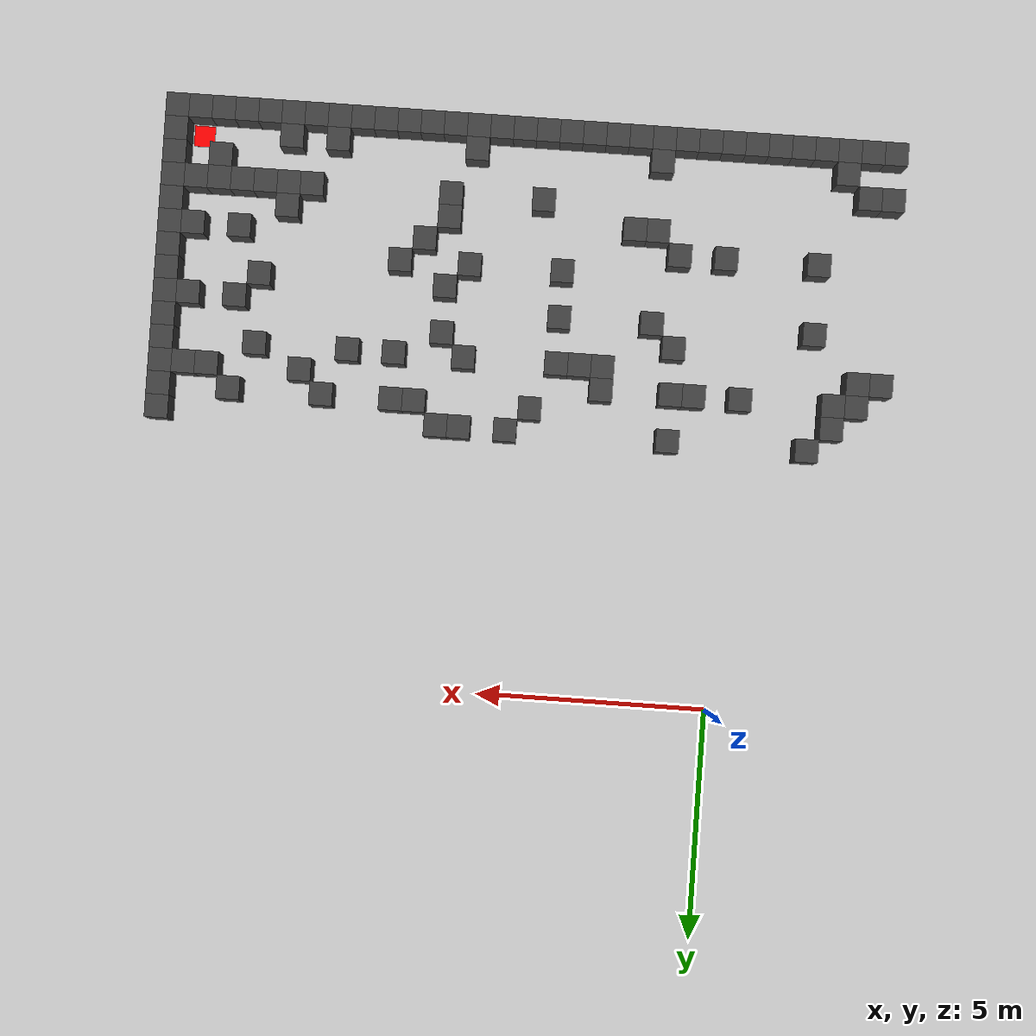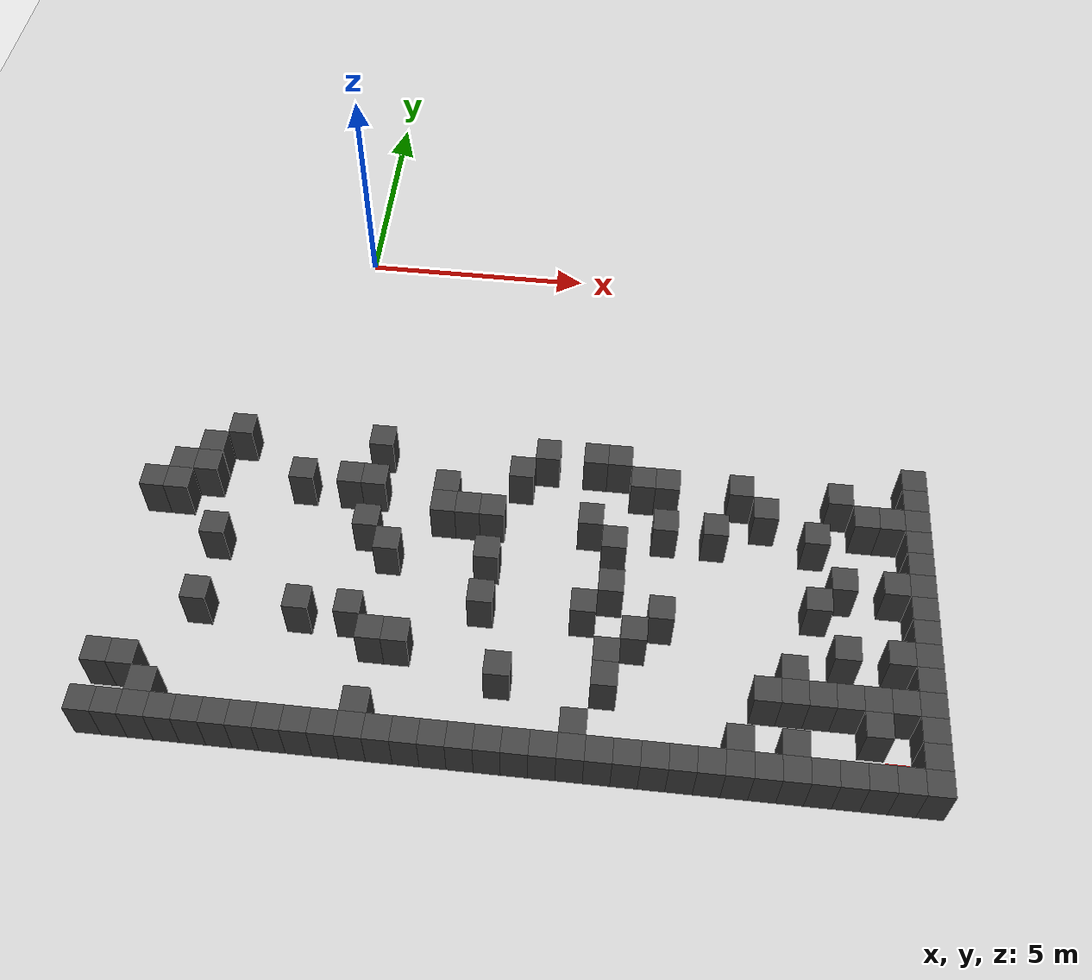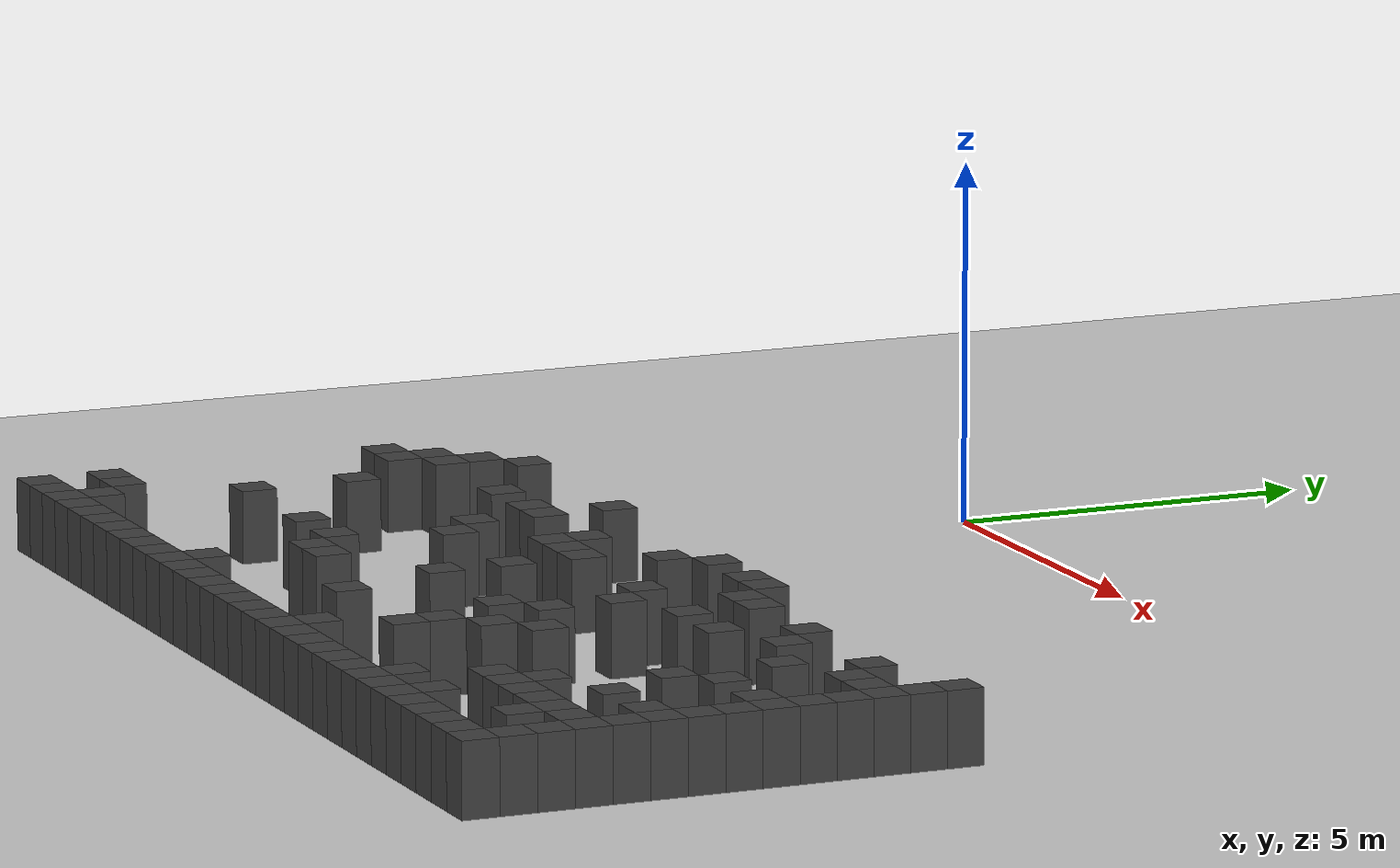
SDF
<sdf version="1.7">
 <world name="map_3200">
  <model name="ground_plane">
   <static>true</static>
   <link name="link">
    <collision name="collision">
     <geometry><plane><normal>0 0 1</normal><size>200 200</size></plane></geometry>
    </collision>
    <visual name="visual">
     <geometry><plane><normal>0 0 1</normal><size>200 200</size></plane></geometry>
     <material><ambient>0.8 0.8 0.8 1</ambient><diffuse>0.8 0.8 0.8 1</diffuse></material>
    </visual>
   </link>
  </model>
  <model name="maze_environment">
   <static>true</static>
   <link name="wall_387">
    <pose>-1.750 -5.750 0.500 0 0 0</pose>
    <collision name="col"><geometry><box><size>0.5 0.5 1.0</size></box></geometry></collision>
    <visual name="vis">
     <geometry><box><size>0.5 0.5 1.0</size></box></geometry>
     <material><ambient>0.15 0.15 0.15 1</ambient><diffuse>0.25 0.25 0.25 1</diffuse></material>
    </visual>
   </link>
   <link name="wall_388">
    <pose>1.250 -5.750 0.500 0 0 0</pose>
    <collision name="col"><geometry><box><size>0.5 0.5 1.0</size></box></geometry></collision>
    <visual name="vis">
     <geometry><box><size>0.5 0.5 1.0</size></box></geometry>
     <material><ambient>0.15 0.15 0.15 1</ambient><diffuse>0.25 0.25 0.25 1</diffuse></material>
    </visual>
   </link>
   <link name="wall_389">
    <pose>4.750 -5.750 0.500 0 0 0</pose>
    <collision name="col"><geometry><box><size>0.5 0.5 1.0</size></box></geometry></collision>
    <visual name="vis">
     <geometry><box><size>0.5 0.5 1.0</size></box></geometry>
     <material><ambient>0.15 0.15 0.15 1</ambient><diffuse>0.25 0.25 0.25 1</diffuse></material>
    </visual>
   </link>
   <link name="wall_390">
    <pose>5.750 -5.750 0.500 0 0 0</pose>
    <collision name="col"><geometry><box><size>0.5 0.5 1.0</size></box></geometry></collision>
    <visual name="vis">
     <geometry><box><size>0.5 0.5 1.0</size></box></geometry>
     <material><ambient>0.15 0.15 0.15 1</ambient><diffuse>0.25 0.25 0.25 1</diffuse></material>
    </visual>
   </link>
   <link name="wall_391">
    <pose>6.250 -5.750 0.500 0 0 0</pose>
    <collision name="col"><geometry><box><size>0.5 0.5 1.0</size></box></geometry></collision>
    <visual name="vis">
     <geometry><box><size>0.5 0.5 1.0</size></box></geometry>
     <material><ambient>0.15 0.15 0.15 1</ambient><diffuse>0.25 0.25 0.25 1</diffuse></material>
    </visual>
   </link>
   <link name="wall_392">
    <pose>12.250 -5.750 0.500 0 0 0</pose>
    <collision name="col"><geometry><box><size>0.5 0.5 1.0</size></box></geometry></collision>
    <visual name="vis">
     <geometry><box><size>0.5 0.5 1.0</size></box></geometry>
     <material><ambient>0.15 0.15 0.15 1</ambient><diffuse>0.25 0.25 0.25 1</diffuse></material>
    </visual>
   </link>
   <link name="wall_397">
    <pose>-2.250 -6.250 0.500 0 0 0</pose>
    <collision name="col"><geometry><box><size>0.5 0.5 1.0</size></box></geometry></collision>
    <visual name="vis">
     <geometry><box><size>0.5 0.5 1.0</size></box></geometry>
     <material><ambient>0.15 0.15 0.15 1</ambient><diffuse>0.25 0.25 0.25 1</diffuse></material>
    </visual>
   </link>
   <link name="wall_398">
    <pose>4.250 -6.250 0.500 0 0 0</pose>
    <collision name="col"><geometry><box><size>0.5 0.5 1.0</size></box></geometry></collision>
    <visual name="vis">
     <geometry><box><size>0.5 0.5 1.0</size></box></geometry>
     <material><ambient>0.15 0.15 0.15 1</ambient><diffuse>0.25 0.25 0.25 1</diffuse></material>
    </visual>
   </link>
   <link name="wall_399">
    <pose>6.750 -6.250 0.500 0 0 0</pose>
    <collision name="col"><geometry><box><size>0.5 0.5 1.0</size></box></geometry></collision>
    <visual name="vis">
     <geometry><box><size>0.5 0.5 1.0</size></box></geometry>
     <material><ambient>0.15 0.15 0.15 1</ambient><diffuse>0.25 0.25 0.25 1</diffuse></material>
    </visual>
   </link>
   <link name="wall_400">
    <pose>7.250 -6.250 0.500 0 0 0</pose>
    <collision name="col"><geometry><box><size>0.5 0.5 1.0</size></box></geometry></collision>
    <visual name="vis">
     <geometry><box><size>0.5 0.5 1.0</size></box></geometry>
     <material><ambient>0.15 0.15 0.15 1</ambient><diffuse>0.25 0.25 0.25 1</diffuse></material>
    </visual>
   </link>
   <link name="wall_401">
    <pose>8.750 -6.250 0.500 0 0 0</pose>
    <collision name="col"><geometry><box><size>0.5 0.5 1.0</size></box></geometry></collision>
    <visual name="vis">
     <geometry><box><size>0.5 0.5 1.0</size></box></geometry>
     <material><ambient>0.15 0.15 0.15 1</ambient><diffuse>0.25 0.25 0.25 1</diffuse></material>
    </visual>
   </link>
   <link name="wall_402">
    <pose>10.750 -6.250 0.500 0 0 0</pose>
    <collision name="col"><geometry><box><size>0.5 0.5 1.0</size></box></geometry></collision>
    <visual name="vis">
     <geometry><box><size>0.5 0.5 1.0</size></box></geometry>
     <material><ambient>0.15 0.15 0.15 1</ambient><diffuse>0.25 0.25 0.25 1</diffuse></material>
    </visual>
   </link>
   <link name="wall_403">
    <pose>12.250 -6.250 0.500 0 0 0</pose>
    <collision name="col"><geometry><box><size>0.5 0.5 1.0</size></box></geometry></collision>
    <visual name="vis">
     <geometry><box><size>0.5 0.5 1.0</size></box></geometry>
     <material><ambient>0.15 0.15 0.15 1</ambient><diffuse>0.25 0.25 0.25 1</diffuse></material>
    </visual>
   </link>
   <link name="wall_407">
    <pose>-2.750 -6.750 0.500 0 0 0</pose>
    <collision name="col"><geometry><box><size>0.5 0.5 1.0</size></box></geometry></collision>
    <visual name="vis">
     <geometry><box><size>0.5 0.5 1.0</size></box></geometry>
     <material><ambient>0.15 0.15 0.15 1</ambient><diffuse>0.25 0.25 0.25 1</diffuse></material>
    </visual>
   </link>
   <link name="wall_408">
    <pose>-2.250 -6.750 0.500 0 0 0</pose>
    <collision name="col"><geometry><box><size>0.5 0.5 1.0</size></box></geometry></collision>
    <visual name="vis">
     <geometry><box><size>0.5 0.5 1.0</size></box></geometry>
     <material><ambient>0.15 0.15 0.15 1</ambient><diffuse>0.25 0.25 0.25 1</diffuse></material>
    </visual>
   </link>
   <link name="wall_409">
    <pose>-0.250 -6.750 0.500 0 0 0</pose>
    <collision name="col"><geometry><box><size>0.5 0.5 1.0</size></box></geometry></collision>
    <visual name="vis">
     <geometry><box><size>0.5 0.5 1.0</size></box></geometry>
     <material><ambient>0.15 0.15 0.15 1</ambient><diffuse>0.25 0.25 0.25 1</diffuse></material>
    </visual>
   </link>
   <link name="wall_410">
    <pose>0.750 -6.750 0.500 0 0 0</pose>
    <collision name="col"><geometry><box><size>0.5 0.5 1.0</size></box></geometry></collision>
    <visual name="vis">
     <geometry><box><size>0.5 0.5 1.0</size></box></geometry>
     <material><ambient>0.15 0.15 0.15 1</ambient><diffuse>0.25 0.25 0.25 1</diffuse></material>
    </visual>
   </link>
   <link name="wall_411">
    <pose>1.250 -6.750 0.500 0 0 0</pose>
    <collision name="col"><geometry><box><size>0.5 0.5 1.0</size></box></geometry></collision>
    <visual name="vis">
     <geometry><box><size>0.5 0.5 1.0</size></box></geometry>
     <material><ambient>0.15 0.15 0.15 1</ambient><diffuse>0.25 0.25 0.25 1</diffuse></material>
    </visual>
   </link>
   <link name="wall_412">
    <pose>2.750 -6.750 0.500 0 0 0</pose>
    <collision name="col"><geometry><box><size>0.5 0.5 1.0</size></box></geometry></collision>
    <visual name="vis">
     <geometry><box><size>0.5 0.5 1.0</size></box></geometry>
     <material><ambient>0.15 0.15 0.15 1</ambient><diffuse>0.25 0.25 0.25 1</diffuse></material>
    </visual>
   </link>
   <link name="wall_413">
    <pose>9.250 -6.750 0.500 0 0 0</pose>
    <collision name="col"><geometry><box><size>0.5 0.5 1.0</size></box></geometry></collision>
    <visual name="vis">
     <geometry><box><size>0.5 0.5 1.0</size></box></geometry>
     <material><ambient>0.15 0.15 0.15 1</ambient><diffuse>0.25 0.25 0.25 1</diffuse></material>
    </visual>
   </link>
   <link name="wall_414">
    <pose>11.250 -6.750 0.500 0 0 0</pose>
    <collision name="col"><geometry><box><size>0.5 0.5 1.0</size></box></geometry></collision>
    <visual name="vis">
     <geometry><box><size>0.5 0.5 1.0</size></box></geometry>
     <material><ambient>0.15 0.15 0.15 1</ambient><diffuse>0.25 0.25 0.25 1</diffuse></material>
    </visual>
   </link>
   <link name="wall_415">
    <pose>11.750 -6.750 0.500 0 0 0</pose>
    <collision name="col"><geometry><box><size>0.5 0.5 1.0</size></box></geometry></collision>
    <visual name="vis">
     <geometry><box><size>0.5 0.5 1.0</size></box></geometry>
     <material><ambient>0.15 0.15 0.15 1</ambient><diffuse>0.25 0.25 0.25 1</diffuse></material>
    </visual>
   </link>
   <link name="wall_416">
    <pose>12.250 -6.750 0.500 0 0 0</pose>
    <collision name="col"><geometry><box><size>0.5 0.5 1.0</size></box></geometry></collision>
    <visual name="vis">
     <geometry><box><size>0.5 0.5 1.0</size></box></geometry>
     <material><ambient>0.15 0.15 0.15 1</ambient><diffuse>0.25 0.25 0.25 1</diffuse></material>
    </visual>
   </link>
   <link name="wall_422">
    <pose>-3.250 -7.250 0.500 0 0 0</pose>
    <collision name="col"><geometry><box><size>0.5 0.5 1.0</size></box></geometry></collision>
    <visual name="vis">
     <geometry><box><size>0.5 0.5 1.0</size></box></geometry>
     <material><ambient>0.15 0.15 0.15 1</ambient><diffuse>0.25 0.25 0.25 1</diffuse></material>
    </visual>
   </link>
   <link name="wall_423">
    <pose>-2.750 -7.250 0.500 0 0 0</pose>
    <collision name="col"><geometry><box><size>0.5 0.5 1.0</size></box></geometry></collision>
    <visual name="vis">
     <geometry><box><size>0.5 0.5 1.0</size></box></geometry>
     <material><ambient>0.15 0.15 0.15 1</ambient><diffuse>0.25 0.25 0.25 1</diffuse></material>
    </visual>
   </link>
   <link name="wall_424">
    <pose>2.750 -7.250 0.500 0 0 0</pose>
    <collision name="col"><geometry><box><size>0.5 0.5 1.0</size></box></geometry></collision>
    <visual name="vis">
     <geometry><box><size>0.5 0.5 1.0</size></box></geometry>
     <material><ambient>0.15 0.15 0.15 1</ambient><diffuse>0.25 0.25 0.25 1</diffuse></material>
    </visual>
   </link>
   <link name="wall_425">
    <pose>3.250 -7.250 0.500 0 0 0</pose>
    <collision name="col"><geometry><box><size>0.5 0.5 1.0</size></box></geometry></collision>
    <visual name="vis">
     <geometry><box><size>0.5 0.5 1.0</size></box></geometry>
     <material><ambient>0.15 0.15 0.15 1</ambient><diffuse>0.25 0.25 0.25 1</diffuse></material>
    </visual>
   </link>
   <link name="wall_426">
    <pose>3.750 -7.250 0.500 0 0 0</pose>
    <collision name="col"><geometry><box><size>0.5 0.5 1.0</size></box></geometry></collision>
    <visual name="vis">
     <geometry><box><size>0.5 0.5 1.0</size></box></geometry>
     <material><ambient>0.15 0.15 0.15 1</ambient><diffuse>0.25 0.25 0.25 1</diffuse></material>
    </visual>
   </link>
   <link name="wall_427">
    <pose>5.750 -7.250 0.500 0 0 0</pose>
    <collision name="col"><geometry><box><size>0.5 0.5 1.0</size></box></geometry></collision>
    <visual name="vis">
     <geometry><box><size>0.5 0.5 1.0</size></box></geometry>
     <material><ambient>0.15 0.15 0.15 1</ambient><diffuse>0.25 0.25 0.25 1</diffuse></material>
    </visual>
   </link>
   <link name="wall_428">
    <pose>7.250 -7.250 0.500 0 0 0</pose>
    <collision name="col"><geometry><box><size>0.5 0.5 1.0</size></box></geometry></collision>
    <visual name="vis">
     <geometry><box><size>0.5 0.5 1.0</size></box></geometry>
     <material><ambient>0.15 0.15 0.15 1</ambient><diffuse>0.25 0.25 0.25 1</diffuse></material>
    </visual>
   </link>
   <link name="wall_429">
    <pose>8.250 -7.250 0.500 0 0 0</pose>
    <collision name="col"><geometry><box><size>0.5 0.5 1.0</size></box></geometry></collision>
    <visual name="vis">
     <geometry><box><size>0.5 0.5 1.0</size></box></geometry>
     <material><ambient>0.15 0.15 0.15 1</ambient><diffuse>0.25 0.25 0.25 1</diffuse></material>
    </visual>
   </link>
   <link name="wall_430">
    <pose>10.250 -7.250 0.500 0 0 0</pose>
    <collision name="col"><geometry><box><size>0.5 0.5 1.0</size></box></geometry></collision>
    <visual name="vis">
     <geometry><box><size>0.5 0.5 1.0</size></box></geometry>
     <material><ambient>0.15 0.15 0.15 1</ambient><diffuse>0.25 0.25 0.25 1</diffuse></material>
    </visual>
   </link>
   <link name="wall_431">
    <pose>12.250 -7.250 0.500 0 0 0</pose>
    <collision name="col"><geometry><box><size>0.5 0.5 1.0</size></box></geometry></collision>
    <visual name="vis">
     <geometry><box><size>0.5 0.5 1.0</size></box></geometry>
     <material><ambient>0.15 0.15 0.15 1</ambient><diffuse>0.25 0.25 0.25 1</diffuse></material>
    </visual>
   </link>
   <link name="wall_435">
    <pose>1.250 -7.750 0.500 0 0 0</pose>
    <collision name="col"><geometry><box><size>0.5 0.5 1.0</size></box></geometry></collision>
    <visual name="vis">
     <geometry><box><size>0.5 0.5 1.0</size></box></geometry>
     <material><ambient>0.15 0.15 0.15 1</ambient><diffuse>0.25 0.25 0.25 1</diffuse></material>
    </visual>
   </link>
   <link name="wall_436">
    <pose>6.250 -7.750 0.500 0 0 0</pose>
    <collision name="col"><geometry><box><size>0.5 0.5 1.0</size></box></geometry></collision>
    <visual name="vis">
     <geometry><box><size>0.5 0.5 1.0</size></box></geometry>
     <material><ambient>0.15 0.15 0.15 1</ambient><diffuse>0.25 0.25 0.25 1</diffuse></material>
    </visual>
   </link>
   <link name="wall_437">
    <pose>12.250 -7.750 0.500 0 0 0</pose>
    <collision name="col"><geometry><box><size>0.5 0.5 1.0</size></box></geometry></collision>
    <visual name="vis">
     <geometry><box><size>0.5 0.5 1.0</size></box></geometry>
     <material><ambient>0.15 0.15 0.15 1</ambient><diffuse>0.25 0.25 0.25 1</diffuse></material>
    </visual>
   </link>
   <link name="wall_441">
    <pose>-1.750 -8.250 0.500 0 0 0</pose>
    <collision name="col"><geometry><box><size>0.5 0.5 1.0</size></box></geometry></collision>
    <visual name="vis">
     <geometry><box><size>0.5 0.5 1.0</size></box></geometry>
     <material><ambient>0.15 0.15 0.15 1</ambient><diffuse>0.25 0.25 0.25 1</diffuse></material>
    </visual>
   </link>
   <link name="wall_442">
    <pose>1.750 -8.250 0.500 0 0 0</pose>
    <collision name="col"><geometry><box><size>0.5 0.5 1.0</size></box></geometry></collision>
    <visual name="vis">
     <geometry><box><size>0.5 0.5 1.0</size></box></geometry>
     <material><ambient>0.15 0.15 0.15 1</ambient><diffuse>0.25 0.25 0.25 1</diffuse></material>
    </visual>
   </link>
   <link name="wall_443">
    <pose>3.750 -8.250 0.500 0 0 0</pose>
    <collision name="col"><geometry><box><size>0.5 0.5 1.0</size></box></geometry></collision>
    <visual name="vis">
     <geometry><box><size>0.5 0.5 1.0</size></box></geometry>
     <material><ambient>0.15 0.15 0.15 1</ambient><diffuse>0.25 0.25 0.25 1</diffuse></material>
    </visual>
   </link>
   <link name="wall_444">
    <pose>10.750 -8.250 0.500 0 0 0</pose>
    <collision name="col"><geometry><box><size>0.5 0.5 1.0</size></box></geometry></collision>
    <visual name="vis">
     <geometry><box><size>0.5 0.5 1.0</size></box></geometry>
     <material><ambient>0.15 0.15 0.15 1</ambient><diffuse>0.25 0.25 0.25 1</diffuse></material>
    </visual>
   </link>
   <link name="wall_445">
    <pose>11.750 -8.250 0.500 0 0 0</pose>
    <collision name="col"><geometry><box><size>0.5 0.5 1.0</size></box></geometry></collision>
    <visual name="vis">
     <geometry><box><size>0.5 0.5 1.0</size></box></geometry>
     <material><ambient>0.15 0.15 0.15 1</ambient><diffuse>0.25 0.25 0.25 1</diffuse></material>
    </visual>
   </link>
   <link name="wall_446">
    <pose>12.250 -8.250 0.500 0 0 0</pose>
    <collision name="col"><geometry><box><size>0.5 0.5 1.0</size></box></geometry></collision>
    <visual name="vis">
     <geometry><box><size>0.5 0.5 1.0</size></box></geometry>
     <material><ambient>0.15 0.15 0.15 1</ambient><diffuse>0.25 0.25 0.25 1</diffuse></material>
    </visual>
   </link>
   <link name="wall_451">
    <pose>6.250 -8.750 0.500 0 0 0</pose>
    <collision name="col"><geometry><box><size>0.5 0.5 1.0</size></box></geometry></collision>
    <visual name="vis">
     <geometry><box><size>0.5 0.5 1.0</size></box></geometry>
     <material><ambient>0.15 0.15 0.15 1</ambient><diffuse>0.25 0.25 0.25 1</diffuse></material>
    </visual>
   </link>
   <link name="wall_452">
    <pose>10.250 -8.750 0.500 0 0 0</pose>
    <collision name="col"><geometry><box><size>0.5 0.5 1.0</size></box></geometry></collision>
    <visual name="vis">
     <geometry><box><size>0.5 0.5 1.0</size></box></geometry>
     <material><ambient>0.15 0.15 0.15 1</ambient><diffuse>0.25 0.25 0.25 1</diffuse></material>
    </visual>
   </link>
   <link name="wall_453">
    <pose>12.250 -8.750 0.500 0 0 0</pose>
    <collision name="col"><geometry><box><size>0.5 0.5 1.0</size></box></geometry></collision>
    <visual name="vis">
     <geometry><box><size>0.5 0.5 1.0</size></box></geometry>
     <material><ambient>0.15 0.15 0.15 1</ambient><diffuse>0.25 0.25 0.25 1</diffuse></material>
    </visual>
   </link>
   <link name="wall_459">
    <pose>3.750 -9.250 0.500 0 0 0</pose>
    <collision name="col"><geometry><box><size>0.5 0.5 1.0</size></box></geometry></collision>
    <visual name="vis">
     <geometry><box><size>0.5 0.5 1.0</size></box></geometry>
     <material><ambient>0.15 0.15 0.15 1</ambient><diffuse>0.25 0.25 0.25 1</diffuse></material>
    </visual>
   </link>
   <link name="wall_460">
    <pose>5.750 -9.250 0.500 0 0 0</pose>
    <collision name="col"><geometry><box><size>0.5 0.5 1.0</size></box></geometry></collision>
    <visual name="vis">
     <geometry><box><size>0.5 0.5 1.0</size></box></geometry>
     <material><ambient>0.15 0.15 0.15 1</ambient><diffuse>0.25 0.25 0.25 1</diffuse></material>
    </visual>
   </link>
   <link name="wall_461">
    <pose>7.250 -9.250 0.500 0 0 0</pose>
    <collision name="col"><geometry><box><size>0.5 0.5 1.0</size></box></geometry></collision>
    <visual name="vis">
     <geometry><box><size>0.5 0.5 1.0</size></box></geometry>
     <material><ambient>0.15 0.15 0.15 1</ambient><diffuse>0.25 0.25 0.25 1</diffuse></material>
    </visual>
   </link>
   <link name="wall_462">
    <pose>12.250 -9.250 0.500 0 0 0</pose>
    <collision name="col"><geometry><box><size>0.5 0.5 1.0</size></box></geometry></collision>
    <visual name="vis">
     <geometry><box><size>0.5 0.5 1.0</size></box></geometry>
     <material><ambient>0.15 0.15 0.15 1</ambient><diffuse>0.25 0.25 0.25 1</diffuse></material>
    </visual>
   </link>
   <link name="wall_464">
    <pose>-1.750 -9.750 0.500 0 0 0</pose>
    <collision name="col"><geometry><box><size>0.5 0.5 1.0</size></box></geometry></collision>
    <visual name="vis">
     <geometry><box><size>0.5 0.5 1.0</size></box></geometry>
     <material><ambient>0.15 0.15 0.15 1</ambient><diffuse>0.25 0.25 0.25 1</diffuse></material>
    </visual>
   </link>
   <link name="wall_465">
    <pose>0.250 -9.750 0.500 0 0 0</pose>
    <collision name="col"><geometry><box><size>0.5 0.5 1.0</size></box></geometry></collision>
    <visual name="vis">
     <geometry><box><size>0.5 0.5 1.0</size></box></geometry>
     <material><ambient>0.15 0.15 0.15 1</ambient><diffuse>0.25 0.25 0.25 1</diffuse></material>
    </visual>
   </link>
   <link name="wall_466">
    <pose>1.250 -9.750 0.500 0 0 0</pose>
    <collision name="col"><geometry><box><size>0.5 0.5 1.0</size></box></geometry></collision>
    <visual name="vis">
     <geometry><box><size>0.5 0.5 1.0</size></box></geometry>
     <material><ambient>0.15 0.15 0.15 1</ambient><diffuse>0.25 0.25 0.25 1</diffuse></material>
    </visual>
   </link>
   <link name="wall_467">
    <pose>6.750 -9.750 0.500 0 0 0</pose>
    <collision name="col"><geometry><box><size>0.5 0.5 1.0</size></box></geometry></collision>
    <visual name="vis">
     <geometry><box><size>0.5 0.5 1.0</size></box></geometry>
     <material><ambient>0.15 0.15 0.15 1</ambient><diffuse>0.25 0.25 0.25 1</diffuse></material>
    </visual>
   </link>
   <link name="wall_468">
    <pose>10.750 -9.750 0.500 0 0 0</pose>
    <collision name="col"><geometry><box><size>0.5 0.5 1.0</size></box></geometry></collision>
    <visual name="vis">
     <geometry><box><size>0.5 0.5 1.0</size></box></geometry>
     <material><ambient>0.15 0.15 0.15 1</ambient><diffuse>0.25 0.25 0.25 1</diffuse></material>
    </visual>
   </link>
   <link name="wall_469">
    <pose>11.750 -9.750 0.500 0 0 0</pose>
    <collision name="col"><geometry><box><size>0.5 0.5 1.0</size></box></geometry></collision>
    <visual name="vis">
     <geometry><box><size>0.5 0.5 1.0</size></box></geometry>
     <material><ambient>0.15 0.15 0.15 1</ambient><diffuse>0.25 0.25 0.25 1</diffuse></material>
    </visual>
   </link>
   <link name="wall_470">
    <pose>12.250 -9.750 0.500 0 0 0</pose>
    <collision name="col"><geometry><box><size>0.5 0.5 1.0</size></box></geometry></collision>
    <visual name="vis">
     <geometry><box><size>0.5 0.5 1.0</size></box></geometry>
     <material><ambient>0.15 0.15 0.15 1</ambient><diffuse>0.25 0.25 0.25 1</diffuse></material>
    </visual>
   </link>
   <link name="wall_477">
    <pose>1.750 -10.250 0.500 0 0 0</pose>
    <collision name="col"><geometry><box><size>0.5 0.5 1.0</size></box></geometry></collision>
    <visual name="vis">
     <geometry><box><size>0.5 0.5 1.0</size></box></geometry>
     <material><ambient>0.15 0.15 0.15 1</ambient><diffuse>0.25 0.25 0.25 1</diffuse></material>
    </visual>
   </link>
   <link name="wall_478">
    <pose>2.250 -10.250 0.500 0 0 0</pose>
    <collision name="col"><geometry><box><size>0.5 0.5 1.0</size></box></geometry></collision>
    <visual name="vis">
     <geometry><box><size>0.5 0.5 1.0</size></box></geometry>
     <material><ambient>0.15 0.15 0.15 1</ambient><diffuse>0.25 0.25 0.25 1</diffuse></material>
    </visual>
   </link>
   <link name="wall_479">
    <pose>6.250 -10.250 0.500 0 0 0</pose>
    <collision name="col"><geometry><box><size>0.5 0.5 1.0</size></box></geometry></collision>
    <visual name="vis">
     <geometry><box><size>0.5 0.5 1.0</size></box></geometry>
     <material><ambient>0.15 0.15 0.15 1</ambient><diffuse>0.25 0.25 0.25 1</diffuse></material>
    </visual>
   </link>
   <link name="wall_480">
    <pose>9.750 -10.250 0.500 0 0 0</pose>
    <collision name="col"><geometry><box><size>0.5 0.5 1.0</size></box></geometry></collision>
    <visual name="vis">
     <geometry><box><size>0.5 0.5 1.0</size></box></geometry>
     <material><ambient>0.15 0.15 0.15 1</ambient><diffuse>0.25 0.25 0.25 1</diffuse></material>
    </visual>
   </link>
   <link name="wall_481">
    <pose>12.250 -10.250 0.500 0 0 0</pose>
    <collision name="col"><geometry><box><size>0.5 0.5 1.0</size></box></geometry></collision>
    <visual name="vis">
     <geometry><box><size>0.5 0.5 1.0</size></box></geometry>
     <material><ambient>0.15 0.15 0.15 1</ambient><diffuse>0.25 0.25 0.25 1</diffuse></material>
    </visual>
   </link>
   <link name="wall_487">
    <pose>4.250 -10.750 0.500 0 0 0</pose>
    <collision name="col"><geometry><box><size>0.5 0.5 1.0</size></box></geometry></collision>
    <visual name="vis">
     <geometry><box><size>0.5 0.5 1.0</size></box></geometry>
     <material><ambient>0.15 0.15 0.15 1</ambient><diffuse>0.25 0.25 0.25 1</diffuse></material>
    </visual>
   </link>
   <link name="wall_488">
    <pose>6.250 -10.750 0.500 0 0 0</pose>
    <collision name="col"><geometry><box><size>0.5 0.5 1.0</size></box></geometry></collision>
    <visual name="vis">
     <geometry><box><size>0.5 0.5 1.0</size></box></geometry>
     <material><ambient>0.15 0.15 0.15 1</ambient><diffuse>0.25 0.25 0.25 1</diffuse></material>
    </visual>
   </link>
   <link name="wall_489">
    <pose>9.250 -10.750 0.500 0 0 0</pose>
    <collision name="col"><geometry><box><size>0.5 0.5 1.0</size></box></geometry></collision>
    <visual name="vis">
     <geometry><box><size>0.5 0.5 1.0</size></box></geometry>
     <material><ambient>0.15 0.15 0.15 1</ambient><diffuse>0.25 0.25 0.25 1</diffuse></material>
    </visual>
   </link>
   <link name="wall_490">
    <pose>9.750 -10.750 0.500 0 0 0</pose>
    <collision name="col"><geometry><box><size>0.5 0.5 1.0</size></box></geometry></collision>
    <visual name="vis">
     <geometry><box><size>0.5 0.5 1.0</size></box></geometry>
     <material><ambient>0.15 0.15 0.15 1</ambient><diffuse>0.25 0.25 0.25 1</diffuse></material>
    </visual>
   </link>
   <link name="wall_491">
    <pose>10.250 -10.750 0.500 0 0 0</pose>
    <collision name="col"><geometry><box><size>0.5 0.5 1.0</size></box></geometry></collision>
    <visual name="vis">
     <geometry><box><size>0.5 0.5 1.0</size></box></geometry>
     <material><ambient>0.15 0.15 0.15 1</ambient><diffuse>0.25 0.25 0.25 1</diffuse></material>
    </visual>
   </link>
   <link name="wall_492">
    <pose>10.750 -10.750 0.500 0 0 0</pose>
    <collision name="col"><geometry><box><size>0.5 0.5 1.0</size></box></geometry></collision>
    <visual name="vis">
     <geometry><box><size>0.5 0.5 1.0</size></box></geometry>
     <material><ambient>0.15 0.15 0.15 1</ambient><diffuse>0.25 0.25 0.25 1</diffuse></material>
    </visual>
   </link>
   <link name="wall_493">
    <pose>11.250 -10.750 0.500 0 0 0</pose>
    <collision name="col"><geometry><box><size>0.5 0.5 1.0</size></box></geometry></collision>
    <visual name="vis">
     <geometry><box><size>0.5 0.5 1.0</size></box></geometry>
     <material><ambient>0.15 0.15 0.15 1</ambient><diffuse>0.25 0.25 0.25 1</diffuse></material>
    </visual>
   </link>
   <link name="wall_494">
    <pose>11.750 -10.750 0.500 0 0 0</pose>
    <collision name="col"><geometry><box><size>0.5 0.5 1.0</size></box></geometry></collision>
    <visual name="vis">
     <geometry><box><size>0.5 0.5 1.0</size></box></geometry>
     <material><ambient>0.15 0.15 0.15 1</ambient><diffuse>0.25 0.25 0.25 1</diffuse></material>
    </visual>
   </link>
   <link name="wall_495">
    <pose>12.250 -10.750 0.500 0 0 0</pose>
    <collision name="col"><geometry><box><size>0.5 0.5 1.0</size></box></geometry></collision>
    <visual name="vis">
     <geometry><box><size>0.5 0.5 1.0</size></box></geometry>
     <material><ambient>0.15 0.15 0.15 1</ambient><diffuse>0.25 0.25 0.25 1</diffuse></material>
    </visual>
   </link>
   <link name="wall_502">
    <pose>-3.250 -11.250 0.500 0 0 0</pose>
    <collision name="col"><geometry><box><size>0.5 0.5 1.0</size></box></geometry></collision>
    <visual name="vis">
     <geometry><box><size>0.5 0.5 1.0</size></box></geometry>
     <material><ambient>0.15 0.15 0.15 1</ambient><diffuse>0.25 0.25 0.25 1</diffuse></material>
    </visual>
   </link>
   <link name="wall_503">
    <pose>-2.750 -11.250 0.500 0 0 0</pose>
    <collision name="col"><geometry><box><size>0.5 0.5 1.0</size></box></geometry></collision>
    <visual name="vis">
     <geometry><box><size>0.5 0.5 1.0</size></box></geometry>
     <material><ambient>0.15 0.15 0.15 1</ambient><diffuse>0.25 0.25 0.25 1</diffuse></material>
    </visual>
   </link>
   <link name="wall_504">
    <pose>11.250 -11.250 0.500 0 0 0</pose>
    <collision name="col"><geometry><box><size>0.5 0.5 1.0</size></box></geometry></collision>
    <visual name="vis">
     <geometry><box><size>0.5 0.5 1.0</size></box></geometry>
     <material><ambient>0.15 0.15 0.15 1</ambient><diffuse>0.25 0.25 0.25 1</diffuse></material>
    </visual>
   </link>
   <link name="wall_505">
    <pose>12.250 -11.250 0.500 0 0 0</pose>
    <collision name="col"><geometry><box><size>0.5 0.5 1.0</size></box></geometry></collision>
    <visual name="vis">
     <geometry><box><size>0.5 0.5 1.0</size></box></geometry>
     <material><ambient>0.15 0.15 0.15 1</ambient><diffuse>0.25 0.25 0.25 1</diffuse></material>
    </visual>
   </link>
   <link name="wall_510">
    <pose>-2.250 -11.750 0.500 0 0 0</pose>
    <collision name="col"><geometry><box><size>0.5 0.5 1.0</size></box></geometry></collision>
    <visual name="vis">
     <geometry><box><size>0.5 0.5 1.0</size></box></geometry>
     <material><ambient>0.15 0.15 0.15 1</ambient><diffuse>0.25 0.25 0.25 1</diffuse></material>
    </visual>
   </link>
   <link name="wall_511">
    <pose>1.750 -11.750 0.500 0 0 0</pose>
    <collision name="col"><geometry><box><size>0.5 0.5 1.0</size></box></geometry></collision>
    <visual name="vis">
     <geometry><box><size>0.5 0.5 1.0</size></box></geometry>
     <material><ambient>0.15 0.15 0.15 1</ambient><diffuse>0.25 0.25 0.25 1</diffuse></material>
    </visual>
   </link>
   <link name="wall_512">
    <pose>5.750 -11.750 0.500 0 0 0</pose>
    <collision name="col"><geometry><box><size>0.5 0.5 1.0</size></box></geometry></collision>
    <visual name="vis">
     <geometry><box><size>0.5 0.5 1.0</size></box></geometry>
     <material><ambient>0.15 0.15 0.15 1</ambient><diffuse>0.25 0.25 0.25 1</diffuse></material>
    </visual>
   </link>
   <link name="wall_513">
    <pose>8.750 -11.750 0.500 0 0 0</pose>
    <collision name="col"><geometry><box><size>0.5 0.5 1.0</size></box></geometry></collision>
    <visual name="vis">
     <geometry><box><size>0.5 0.5 1.0</size></box></geometry>
     <material><ambient>0.15 0.15 0.15 1</ambient><diffuse>0.25 0.25 0.25 1</diffuse></material>
    </visual>
   </link>
   <link name="wall_514">
    <pose>9.750 -11.750 0.500 0 0 0</pose>
    <collision name="col"><geometry><box><size>0.5 0.5 1.0</size></box></geometry></collision>
    <visual name="vis">
     <geometry><box><size>0.5 0.5 1.0</size></box></geometry>
     <material><ambient>0.15 0.15 0.15 1</ambient><diffuse>0.25 0.25 0.25 1</diffuse></material>
    </visual>
   </link>
   <link name="wall_515">
    <pose>12.250 -11.750 0.500 0 0 0</pose>
    <collision name="col"><geometry><box><size>0.5 0.5 1.0</size></box></geometry></collision>
    <visual name="vis">
     <geometry><box><size>0.5 0.5 1.0</size></box></geometry>
     <material><ambient>0.15 0.15 0.15 1</ambient><diffuse>0.25 0.25 0.25 1</diffuse></material>
    </visual>
   </link>
   <link name="wall_534">
    <pose>-3.250 -12.250 0.500 0 0 0</pose>
    <collision name="col"><geometry><box><size>0.5 0.5 1.0</size></box></geometry></collision>
    <visual name="vis">
     <geometry><box><size>0.5 0.5 1.0</size></box></geometry>
     <material><ambient>0.15 0.15 0.15 1</ambient><diffuse>0.25 0.25 0.25 1</diffuse></material>
    </visual>
   </link>
   <link name="wall_535">
    <pose>-2.750 -12.250 0.500 0 0 0</pose>
    <collision name="col"><geometry><box><size>0.5 0.5 1.0</size></box></geometry></collision>
    <visual name="vis">
     <geometry><box><size>0.5 0.5 1.0</size></box></geometry>
     <material><ambient>0.15 0.15 0.15 1</ambient><diffuse>0.25 0.25 0.25 1</diffuse></material>
    </visual>
   </link>
   <link name="wall_536">
    <pose>-2.250 -12.250 0.500 0 0 0</pose>
    <collision name="col"><geometry><box><size>0.5 0.5 1.0</size></box></geometry></collision>
    <visual name="vis">
     <geometry><box><size>0.5 0.5 1.0</size></box></geometry>
     <material><ambient>0.15 0.15 0.15 1</ambient><diffuse>0.25 0.25 0.25 1</diffuse></material>
    </visual>
   </link>
   <link name="wall_537">
    <pose>-1.750 -12.250 0.500 0 0 0</pose>
    <collision name="col"><geometry><box><size>0.5 0.5 1.0</size></box></geometry></collision>
    <visual name="vis">
     <geometry><box><size>0.5 0.5 1.0</size></box></geometry>
     <material><ambient>0.15 0.15 0.15 1</ambient><diffuse>0.25 0.25 0.25 1</diffuse></material>
    </visual>
   </link>
   <link name="wall_538">
    <pose>-1.250 -12.250 0.500 0 0 0</pose>
    <collision name="col"><geometry><box><size>0.5 0.5 1.0</size></box></geometry></collision>
    <visual name="vis">
     <geometry><box><size>0.5 0.5 1.0</size></box></geometry>
     <material><ambient>0.15 0.15 0.15 1</ambient><diffuse>0.25 0.25 0.25 1</diffuse></material>
    </visual>
   </link>
   <link name="wall_539">
    <pose>-0.750 -12.250 0.500 0 0 0</pose>
    <collision name="col"><geometry><box><size>0.5 0.5 1.0</size></box></geometry></collision>
    <visual name="vis">
     <geometry><box><size>0.5 0.5 1.0</size></box></geometry>
     <material><ambient>0.15 0.15 0.15 1</ambient><diffuse>0.25 0.25 0.25 1</diffuse></material>
    </visual>
   </link>
   <link name="wall_540">
    <pose>-0.250 -12.250 0.500 0 0 0</pose>
    <collision name="col"><geometry><box><size>0.5 0.5 1.0</size></box></geometry></collision>
    <visual name="vis">
     <geometry><box><size>0.5 0.5 1.0</size></box></geometry>
     <material><ambient>0.15 0.15 0.15 1</ambient><diffuse>0.25 0.25 0.25 1</diffuse></material>
    </visual>
   </link>
   <link name="wall_541">
    <pose>0.250 -12.250 0.500 0 0 0</pose>
    <collision name="col"><geometry><box><size>0.5 0.5 1.0</size></box></geometry></collision>
    <visual name="vis">
     <geometry><box><size>0.5 0.5 1.0</size></box></geometry>
     <material><ambient>0.15 0.15 0.15 1</ambient><diffuse>0.25 0.25 0.25 1</diffuse></material>
    </visual>
   </link>
   <link name="wall_542">
    <pose>0.750 -12.250 0.500 0 0 0</pose>
    <collision name="col"><geometry><box><size>0.5 0.5 1.0</size></box></geometry></collision>
    <visual name="vis">
     <geometry><box><size>0.5 0.5 1.0</size></box></geometry>
     <material><ambient>0.15 0.15 0.15 1</ambient><diffuse>0.25 0.25 0.25 1</diffuse></material>
    </visual>
   </link>
   <link name="wall_543">
    <pose>1.250 -12.250 0.500 0 0 0</pose>
    <collision name="col"><geometry><box><size>0.5 0.5 1.0</size></box></geometry></collision>
    <visual name="vis">
     <geometry><box><size>0.5 0.5 1.0</size></box></geometry>
     <material><ambient>0.15 0.15 0.15 1</ambient><diffuse>0.25 0.25 0.25 1</diffuse></material>
    </visual>
   </link>
   <link name="wall_544">
    <pose>1.750 -12.250 0.500 0 0 0</pose>
    <collision name="col"><geometry><box><size>0.5 0.5 1.0</size></box></geometry></collision>
    <visual name="vis">
     <geometry><box><size>0.5 0.5 1.0</size></box></geometry>
     <material><ambient>0.15 0.15 0.15 1</ambient><diffuse>0.25 0.25 0.25 1</diffuse></material>
    </visual>
   </link>
   <link name="wall_545">
    <pose>2.250 -12.250 0.500 0 0 0</pose>
    <collision name="col"><geometry><box><size>0.5 0.5 1.0</size></box></geometry></collision>
    <visual name="vis">
     <geometry><box><size>0.5 0.5 1.0</size></box></geometry>
     <material><ambient>0.15 0.15 0.15 1</ambient><diffuse>0.25 0.25 0.25 1</diffuse></material>
    </visual>
   </link>
   <link name="wall_546">
    <pose>2.750 -12.250 0.500 0 0 0</pose>
    <collision name="col"><geometry><box><size>0.5 0.5 1.0</size></box></geometry></collision>
    <visual name="vis">
     <geometry><box><size>0.5 0.5 1.0</size></box></geometry>
     <material><ambient>0.15 0.15 0.15 1</ambient><diffuse>0.25 0.25 0.25 1</diffuse></material>
    </visual>
   </link>
   <link name="wall_547">
    <pose>3.250 -12.250 0.500 0 0 0</pose>
    <collision name="col"><geometry><box><size>0.5 0.5 1.0</size></box></geometry></collision>
    <visual name="vis">
     <geometry><box><size>0.5 0.5 1.0</size></box></geometry>
     <material><ambient>0.15 0.15 0.15 1</ambient><diffuse>0.25 0.25 0.25 1</diffuse></material>
    </visual>
   </link>
   <link name="wall_548">
    <pose>3.750 -12.250 0.500 0 0 0</pose>
    <collision name="col"><geometry><box><size>0.5 0.5 1.0</size></box></geometry></collision>
    <visual name="vis">
     <geometry><box><size>0.5 0.5 1.0</size></box></geometry>
     <material><ambient>0.15 0.15 0.15 1</ambient><diffuse>0.25 0.25 0.25 1</diffuse></material>
    </visual>
   </link>
   <link name="wall_549">
    <pose>4.250 -12.250 0.500 0 0 0</pose>
    <collision name="col"><geometry><box><size>0.5 0.5 1.0</size></box></geometry></collision>
    <visual name="vis">
     <geometry><box><size>0.5 0.5 1.0</size></box></geometry>
     <material><ambient>0.15 0.15 0.15 1</ambient><diffuse>0.25 0.25 0.25 1</diffuse></material>
    </visual>
   </link>
   <link name="wall_550">
    <pose>4.750 -12.250 0.500 0 0 0</pose>
    <collision name="col"><geometry><box><size>0.5 0.5 1.0</size></box></geometry></collision>
    <visual name="vis">
     <geometry><box><size>0.5 0.5 1.0</size></box></geometry>
     <material><ambient>0.15 0.15 0.15 1</ambient><diffuse>0.25 0.25 0.25 1</diffuse></material>
    </visual>
   </link>
   <link name="wall_551">
    <pose>5.250 -12.250 0.500 0 0 0</pose>
    <collision name="col"><geometry><box><size>0.5 0.5 1.0</size></box></geometry></collision>
    <visual name="vis">
     <geometry><box><size>0.5 0.5 1.0</size></box></geometry>
     <material><ambient>0.15 0.15 0.15 1</ambient><diffuse>0.25 0.25 0.25 1</diffuse></material>
    </visual>
   </link>
   <link name="wall_552">
    <pose>5.750 -12.250 0.500 0 0 0</pose>
    <collision name="col"><geometry><box><size>0.5 0.5 1.0</size></box></geometry></collision>
    <visual name="vis">
     <geometry><box><size>0.5 0.5 1.0</size></box></geometry>
     <material><ambient>0.15 0.15 0.15 1</ambient><diffuse>0.25 0.25 0.25 1</diffuse></material>
    </visual>
   </link>
   <link name="wall_553">
    <pose>6.250 -12.250 0.500 0 0 0</pose>
    <collision name="col"><geometry><box><size>0.5 0.5 1.0</size></box></geometry></collision>
    <visual name="vis">
     <geometry><box><size>0.5 0.5 1.0</size></box></geometry>
     <material><ambient>0.15 0.15 0.15 1</ambient><diffuse>0.25 0.25 0.25 1</diffuse></material>
    </visual>
   </link>
   <link name="wall_554">
    <pose>6.750 -12.250 0.500 0 0 0</pose>
    <collision name="col"><geometry><box><size>0.5 0.5 1.0</size></box></geometry></collision>
    <visual name="vis">
     <geometry><box><size>0.5 0.5 1.0</size></box></geometry>
     <material><ambient>0.15 0.15 0.15 1</ambient><diffuse>0.25 0.25 0.25 1</diffuse></material>
    </visual>
   </link>
   <link name="wall_555">
    <pose>7.250 -12.250 0.500 0 0 0</pose>
    <collision name="col"><geometry><box><size>0.5 0.5 1.0</size></box></geometry></collision>
    <visual name="vis">
     <geometry><box><size>0.5 0.5 1.0</size></box></geometry>
     <material><ambient>0.15 0.15 0.15 1</ambient><diffuse>0.25 0.25 0.25 1</diffuse></material>
    </visual>
   </link>
   <link name="wall_556">
    <pose>7.750 -12.250 0.500 0 0 0</pose>
    <collision name="col"><geometry><box><size>0.5 0.5 1.0</size></box></geometry></collision>
    <visual name="vis">
     <geometry><box><size>0.5 0.5 1.0</size></box></geometry>
     <material><ambient>0.15 0.15 0.15 1</ambient><diffuse>0.25 0.25 0.25 1</diffuse></material>
    </visual>
   </link>
   <link name="wall_557">
    <pose>8.250 -12.250 0.500 0 0 0</pose>
    <collision name="col"><geometry><box><size>0.5 0.5 1.0</size></box></geometry></collision>
    <visual name="vis">
     <geometry><box><size>0.5 0.5 1.0</size></box></geometry>
     <material><ambient>0.15 0.15 0.15 1</ambient><diffuse>0.25 0.25 0.25 1</diffuse></material>
    </visual>
   </link>
   <link name="wall_558">
    <pose>8.750 -12.250 0.500 0 0 0</pose>
    <collision name="col"><geometry><box><size>0.5 0.5 1.0</size></box></geometry></collision>
    <visual name="vis">
     <geometry><box><size>0.5 0.5 1.0</size></box></geometry>
     <material><ambient>0.15 0.15 0.15 1</ambient><diffuse>0.25 0.25 0.25 1</diffuse></material>
    </visual>
   </link>
   <link name="wall_559">
    <pose>9.250 -12.250 0.500 0 0 0</pose>
    <collision name="col"><geometry><box><size>0.5 0.5 1.0</size></box></geometry></collision>
    <visual name="vis">
     <geometry><box><size>0.5 0.5 1.0</size></box></geometry>
     <material><ambient>0.15 0.15 0.15 1</ambient><diffuse>0.25 0.25 0.25 1</diffuse></material>
    </visual>
   </link>
   <link name="wall_560">
    <pose>9.750 -12.250 0.500 0 0 0</pose>
    <collision name="col"><geometry><box><size>0.5 0.5 1.0</size></box></geometry></collision>
    <visual name="vis">
     <geometry><box><size>0.5 0.5 1.0</size></box></geometry>
     <material><ambient>0.15 0.15 0.15 1</ambient><diffuse>0.25 0.25 0.25 1</diffuse></material>
    </visual>
   </link>
   <link name="wall_561">
    <pose>10.250 -12.250 0.500 0 0 0</pose>
    <collision name="col"><geometry><box><size>0.5 0.5 1.0</size></box></geometry></collision>
    <visual name="vis">
     <geometry><box><size>0.5 0.5 1.0</size></box></geometry>
     <material><ambient>0.15 0.15 0.15 1</ambient><diffuse>0.25 0.25 0.25 1</diffuse></material>
    </visual>
   </link>
   <link name="wall_562">
    <pose>10.750 -12.250 0.500 0 0 0</pose>
    <collision name="col"><geometry><box><size>0.5 0.5 1.0</size></box></geometry></collision>
    <visual name="vis">
     <geometry><box><size>0.5 0.5 1.0</size></box></geometry>
     <material><ambient>0.15 0.15 0.15 1</ambient><diffuse>0.25 0.25 0.25 1</diffuse></material>
    </visual>
   </link>
   <link name="wall_563">
    <pose>11.250 -12.250 0.500 0 0 0</pose>
    <collision name="col"><geometry><box><size>0.5 0.5 1.0</size></box></geometry></collision>
    <visual name="vis">
     <geometry><box><size>0.5 0.5 1.0</size></box></geometry>
     <material><ambient>0.15 0.15 0.15 1</ambient><diffuse>0.25 0.25 0.25 1</diffuse></material>
    </visual>
   </link>
   <link name="wall_564">
    <pose>11.750 -12.250 0.500 0 0 0</pose>
    <collision name="col"><geometry><box><size>0.5 0.5 1.0</size></box></geometry></collision>
    <visual name="vis">
     <geometry><box><size>0.5 0.5 1.0</size></box></geometry>
     <material><ambient>0.15 0.15 0.15 1</ambient><diffuse>0.25 0.25 0.25 1</diffuse></material>
    </visual>
   </link>
   <link name="wall_565">
    <pose>12.250 -12.250 0.500 0 0 0</pose>
    <collision name="col"><geometry><box><size>0.5 0.5 1.0</size></box></geometry></collision>
    <visual name="vis">
     <geometry><box><size>0.5 0.5 1.0</size></box></geometry>
     <material><ambient>0.15 0.15 0.15 1</ambient><diffuse>0.25 0.25 0.25 1</diffuse></material>
    </visual>
   </link>
   <link name="goal_zone">
    <pose>11.750 -11.750 0.005 0 0 0</pose>
    <visual name="vis">
     <geometry><box><size>0.45 0.45 0.01</size></box></geometry>
     <material>
      <ambient>1.0 0.0 0.0 1</ambient>
      <diffuse>1.0 0.0 0.0 1</diffuse>
      <emissive>0.60 0.00 0.00 1</emissive>
     </material>
    </visual>
   </link>
  </model>
 </world>
</sdf>
